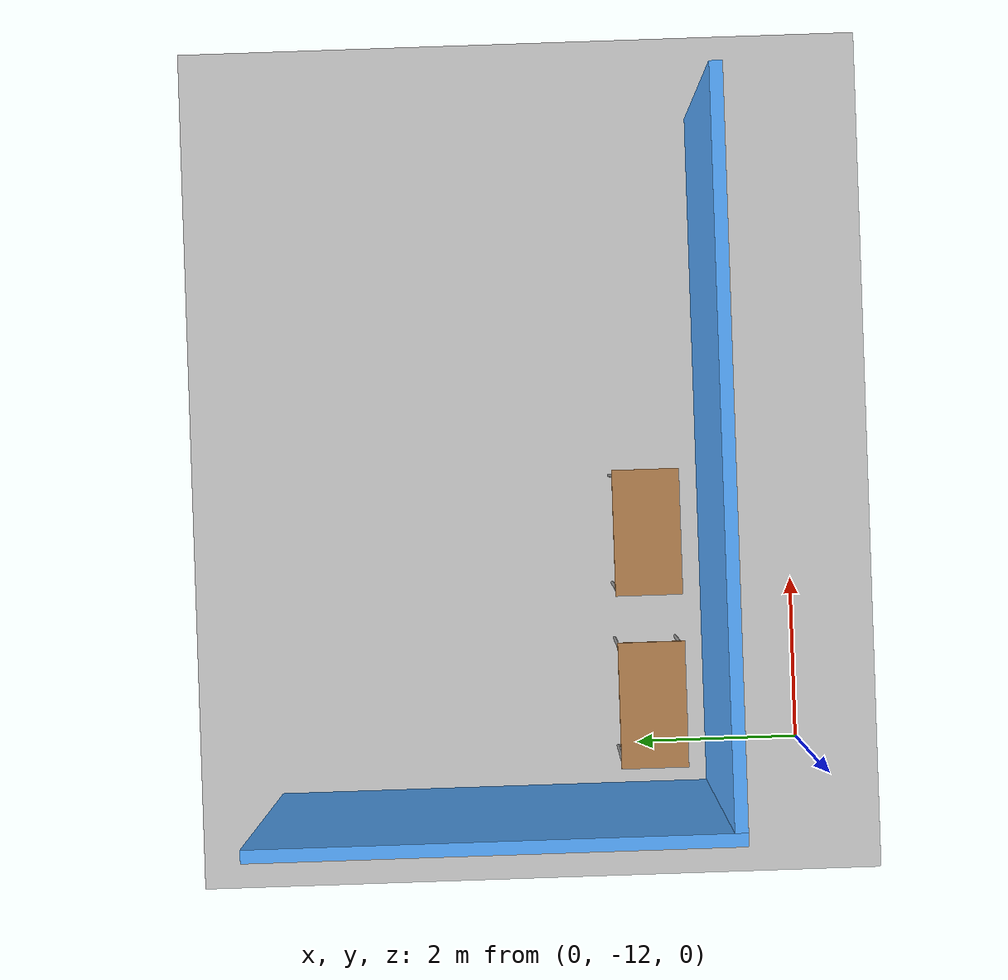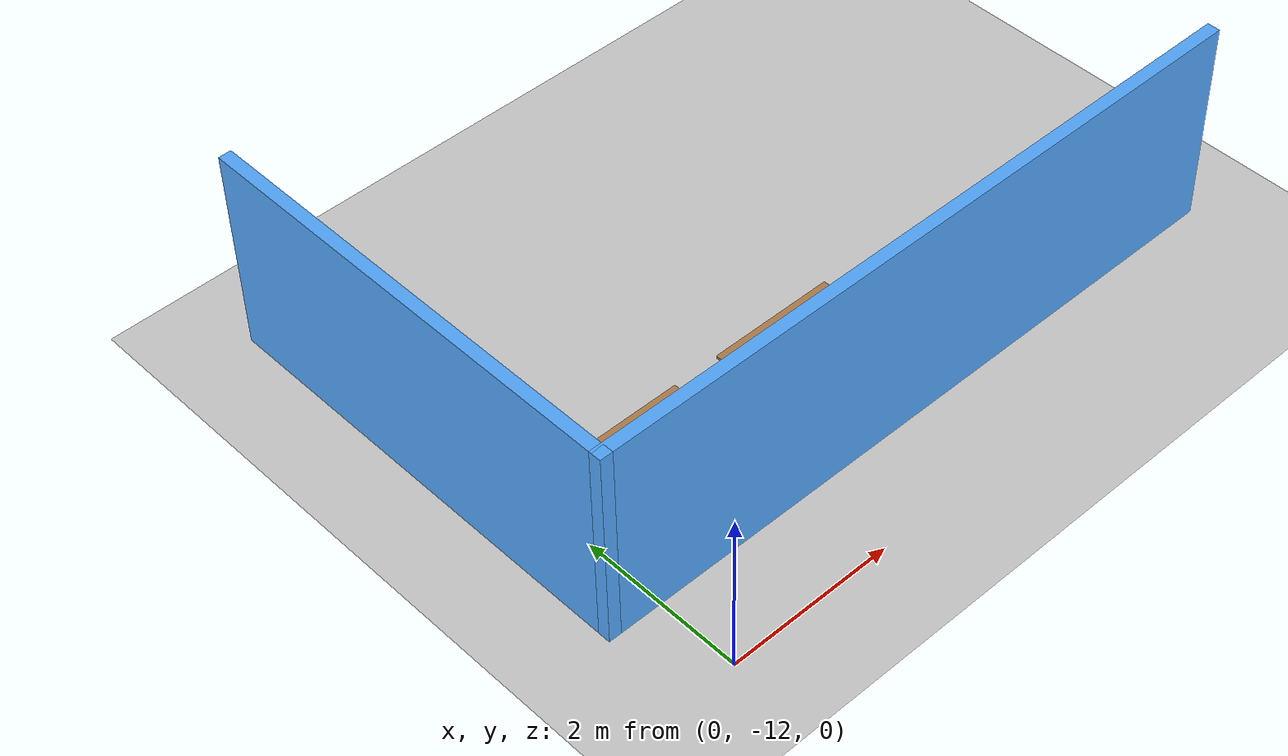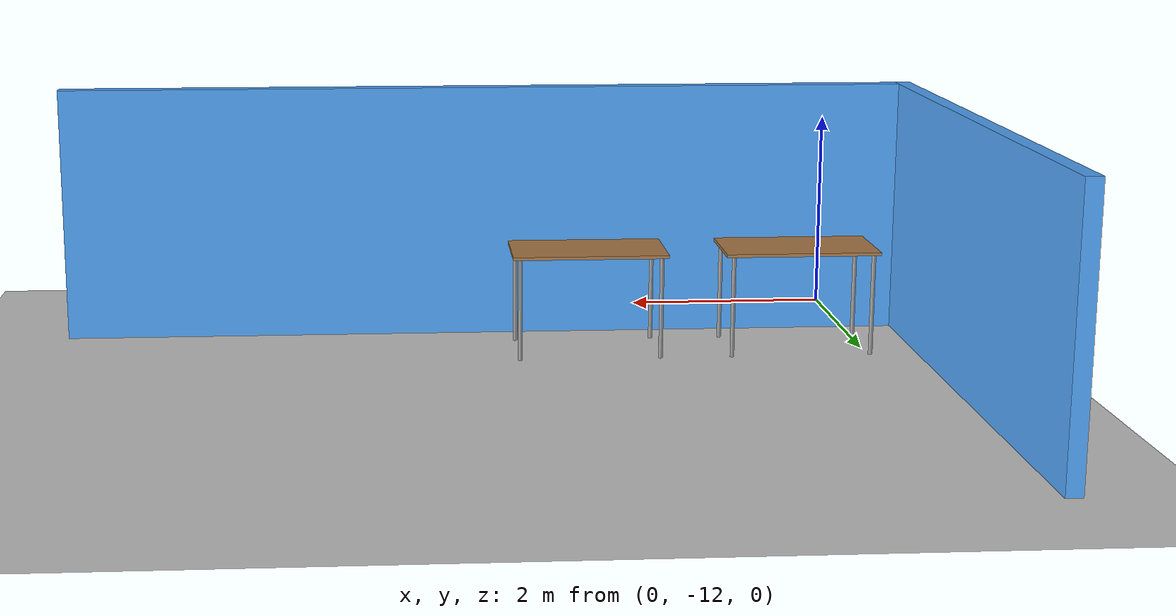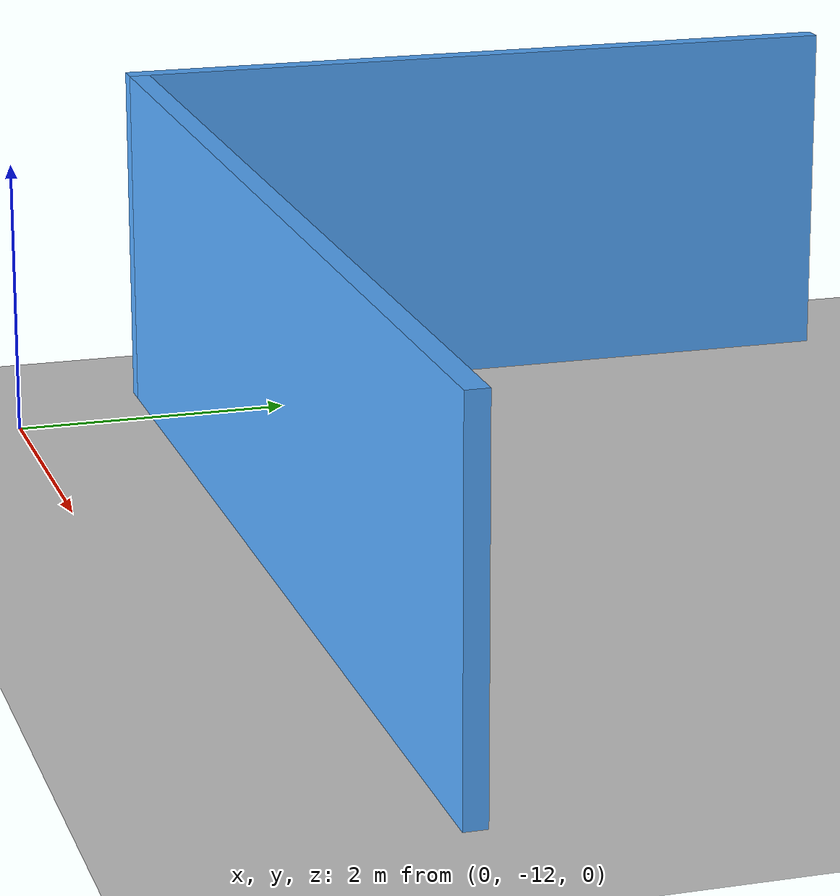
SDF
<sdf version="1.6">
 <world name="default">
  <model name="ground_plane">
   <static>1</static>
   <link name="link">
    <collision name="collision">
     <geometry><plane><normal>0 0 1</normal><size>100 100</size></plane></geometry>
     <surface><friction><ode><mu>100</mu><mu2>50</mu2></ode></friction></surface>
    </collision>
    <visual name="visual">
     <cast_shadows>0</cast_shadows>
     <geometry><plane><normal>0 0 1</normal><size>100 100</size></plane></geometry>
     <material>
      <script><uri>file://media/materials/scripts/gazebo.material</uri><name>Gazebo/Grey</name></script>
     </material>
    </visual>
   </link>
  </model>
  <model name="Building">
   <link name="Wall_10">
    <pose>2.99997 -7.175 0 0 -0 1.5708</pose>
    <visual name="Wall_10_Visual">
     <pose>0 0 1.25 0 -0 0</pose>
     <geometry><box><size>5.5 0.15 2.5</size></box></geometry>
     <material>
      <script><uri>file://media/materials/scripts/gazebo.material</uri><name>Gazebo/Grey</name></script>
      <ambient>0.333333 0.666667 1 1</ambient>
      <diffuse>0.7 0.7 0.7 1</diffuse>
      <specular>0.01 0.01 0.01 1</specular>
      <emissive>0 0 0 1</emissive>
     </material>
     <meta><layer>0</layer></meta>
    </visual>
    <collision name="Wall_10_Collision">
     <pose>0 0 1.25 0 -0 0</pose>
     <geometry><box><size>5.5 0.15 2.5</size></box></geometry>
     <surface>
      <friction>
       <ode><mu>1</mu><mu2>1</mu2><fdir1>0 0 0</fdir1><slip1>0</slip1><slip2>0</slip2></ode>
       <torsional>
        <coefficient>1</coefficient>
        <patch_radius>0</patch_radius>
        <surface_radius>0</surface_radius>
        <use_patch_radius>1</use_patch_radius>
        <ode><slip>0</slip></ode>
       </torsional>
      </friction>
      <bounce><restitution_coefficient>0</restitution_coefficient><threshold>1e+06</threshold></bounce>
      <contact>
       <collide_without_contact>0</collide_without_contact>
       <collide_without_contact_bitmask>1</collide_without_contact_bitmask>
       <collide_bitmask>1</collide_bitmask>
       <ode>
        <soft_cfm>0</soft_cfm>
        <soft_erp>0.2</soft_erp>
        <kp>1e+13</kp>
        <kd>1</kd>
        <max_vel>0.01</max_vel>
        <min_depth>0</min_depth>
       </ode>
       <bullet>
        <split_impulse>1</split_impulse>
        <split_impulse_penetration_threshold>-0.01</split_impulse_penetration_threshold>
        <soft_cfm>0</soft_cfm>
        <soft_erp>0.2</soft_erp>
        <kp>1e+13</kp>
        <kd>1</kd>
       </bullet>
      </contact>
     </surface>
    </collision>
   </link>
   <link name="Wall_9">
    <pose>7.17497 -9.85 0 0 -0 3.14159</pose>
    <visual name="Wall_9_Visual">
     <pose>0 0 1.25 0 -0 0</pose>
     <geometry><box><size>8.5 0.15 2.5</size></box></geometry>
     <material>
      <script><uri>file://media/materials/scripts/gazebo.material</uri><name>Gazebo/Grey</name></script>
      <ambient>0.333333 0.666667 1 1</ambient>
      <diffuse>0.7 0.7 0.7 1</diffuse>
      <specular>0.01 0.01 0.01 1</specular>
      <emissive>0 0 0 1</emissive>
     </material>
     <meta><layer>0</layer></meta>
    </visual>
    <collision name="Wall_9_Collision">
     <pose>0 0 1.25 0 -0 0</pose>
     <geometry><box><size>8.5 0.15 2.5</size></box></geometry>
     <surface>
      <friction>
       <ode><mu>1</mu><mu2>1</mu2><fdir1>0 0 0</fdir1><slip1>0</slip1><slip2>0</slip2></ode>
       <torsional>
        <coefficient>1</coefficient>
        <patch_radius>0</patch_radius>
        <surface_radius>0</surface_radius>
        <use_patch_radius>1</use_patch_radius>
        <ode><slip>0</slip></ode>
       </torsional>
      </friction>
      <bounce><restitution_coefficient>0</restitution_coefficient><threshold>1e+06</threshold></bounce>
      <contact>
       <collide_without_contact>0</collide_without_contact>
       <collide_without_contact_bitmask>1</collide_without_contact_bitmask>
       <collide_bitmask>1</collide_bitmask>
       <ode>
        <soft_cfm>0</soft_cfm>
        <soft_erp>0.2</soft_erp>
        <kp>1e+13</kp>
        <kd>1</kd>
        <max_vel>0.01</max_vel>
        <min_depth>0</min_depth>
       </ode>
       <bullet>
        <split_impulse>1</split_impulse>
        <split_impulse_penetration_threshold>-0.01</split_impulse_penetration_threshold>
        <soft_cfm>0</soft_cfm>
        <soft_erp>0.2</soft_erp>
        <kp>1e+13</kp>
        <kd>1</kd>
       </bullet>
      </contact>
     </surface>
    </collision>
   </link>
   <static>1</static>
   <pose>-3.57737 -1.07989 0 0 -0 0</pose>
  </model>
  <model name="table_0">
   <static>1</static>
   <link name="link">
    <collision name="surface">
     <pose>0 0 1 0 -0 0</pose>
     <geometry><box><size>1.5 0.8 0.03</size></box></geometry>
     <surface><friction><ode><mu>0.6</mu><mu2>0.6</mu2></ode></friction></surface>
    </collision>
    <visual name="visual1">
     <pose>0 0 1 0 -0 0</pose>
     <geometry><box><size>1.5 0.8 0.03</size></box></geometry>
     <material>
      <script><uri>file://media/materials/scripts/gazebo.material</uri><name>Gazebo/Wood</name></script>
     </material>
    </visual>
    <collision name="front_left_leg">
     <pose>0.68 0.38 0.5 0 -0 0</pose>
     <geometry><cylinder><radius>0.02</radius><length>1</length></cylinder></geometry>
    </collision>
    <visual name="front_left_leg">
     <pose>0.68 0.38 0.5 0 -0 0</pose>
     <geometry><cylinder><radius>0.02</radius><length>1</length></cylinder></geometry>
     <material>
      <script><uri>file://media/materials/scripts/gazebo.material</uri><name>Gazebo/Grey</name></script>
     </material>
    </visual>
    <collision name="front_right_leg">
     <pose>0.68 -0.38 0.5 0 -0 0</pose>
     <geometry><cylinder><radius>0.02</radius><length>1</length></cylinder></geometry>
    </collision>
    <visual name="front_right_leg">
     <pose>0.68 -0.38 0.5 0 -0 0</pose>
     <geometry><cylinder><radius>0.02</radius><length>1</length></cylinder></geometry>
     <material>
      <script><uri>file://media/materials/scripts/gazebo.material</uri><name>Gazebo/Grey</name></script>
     </material>
    </visual>
    <collision name="back_right_leg">
     <pose>-0.68 -0.38 0.5 0 -0 0</pose>
     <geometry><cylinder><radius>0.02</radius><length>1</length></cylinder></geometry>
    </collision>
    <visual name="back_right_leg">
     <pose>-0.68 -0.38 0.5 0 -0 0</pose>
     <geometry><cylinder><radius>0.02</radius><length>1</length></cylinder></geometry>
     <material>
      <script><uri>file://media/materials/scripts/gazebo.material</uri><name>Gazebo/Grey</name></script>
     </material>
    </visual>
    <collision name="back_left_leg">
     <pose>-0.68 0.38 0.5 0 -0 0</pose>
     <geometry><cylinder><radius>0.02</radius><length>1</length></cylinder></geometry>
    </collision>
    <visual name="back_left_leg">
     <pose>-0.68 0.38 0.5 0 -0 0</pose>
     <geometry><cylinder><radius>0.02</radius><length>1</length></cylinder></geometry>
     <material>
      <script><uri>file://media/materials/scripts/gazebo.material</uri><name>Gazebo/Grey</name></script>
     </material>
    </visual>
   </link>
   <pose>0.641362 -10.1384 0 0 -0 0</pose>
  </model>
  <model name="table_1">
   <static>1</static>
   <link name="link">
    <collision name="surface">
     <pose>0 0 1 0 -0 0</pose>
     <geometry><box><size>1.5 0.8 0.03</size></box></geometry>
     <surface><friction><ode><mu>0.6</mu><mu2>0.6</mu2></ode></friction></surface>
    </collision>
    <visual name="visual1">
     <pose>0 0 1 0 -0 0</pose>
     <geometry><box><size>1.5 0.8 0.03</size></box></geometry>
     <material>
      <script><uri>file://media/materials/scripts/gazebo.material</uri><name>Gazebo/Wood</name></script>
     </material>
    </visual>
    <collision name="front_left_leg">
     <pose>0.68 0.38 0.5 0 -0 0</pose>
     <geometry><cylinder><radius>0.02</radius><length>1</length></cylinder></geometry>
    </collision>
    <visual name="front_left_leg">
     <pose>0.68 0.38 0.5 0 -0 0</pose>
     <geometry><cylinder><radius>0.02</radius><length>1</length></cylinder></geometry>
     <material>
      <script><uri>file://media/materials/scripts/gazebo.material</uri><name>Gazebo/Grey</name></script>
     </material>
    </visual>
    <collision name="front_right_leg">
     <pose>0.68 -0.38 0.5 0 -0 0</pose>
     <geometry><cylinder><radius>0.02</radius><length>1</length></cylinder></geometry>
    </collision>
    <visual name="front_right_leg">
     <pose>0.68 -0.38 0.5 0 -0 0</pose>
     <geometry><cylinder><radius>0.02</radius><length>1</length></cylinder></geometry>
     <material>
      <script><uri>file://media/materials/scripts/gazebo.material</uri><name>Gazebo/Grey</name></script>
     </material>
    </visual>
    <collision name="back_right_leg">
     <pose>-0.68 -0.38 0.5 0 -0 0</pose>
     <geometry><cylinder><radius>0.02</radius><length>1</length></cylinder></geometry>
    </collision>
    <visual name="back_right_leg">
     <pose>-0.68 -0.38 0.5 0 -0 0</pose>
     <geometry><cylinder><radius>0.02</radius><length>1</length></cylinder></geometry>
     <material>
      <script><uri>file://media/materials/scripts/gazebo.material</uri><name>Gazebo/Grey</name></script>
     </material>
    </visual>
    <collision name="back_left_leg">
     <pose>-0.68 0.38 0.5 0 -0 0</pose>
     <geometry><cylinder><radius>0.02</radius><length>1</length></cylinder></geometry>
    </collision>
    <visual name="back_left_leg">
     <pose>-0.68 0.38 0.5 0 -0 0</pose>
     <geometry><cylinder><radius>0.02</radius><length>1</length></cylinder></geometry>
     <material>
      <script><uri>file://media/materials/scripts/gazebo.material</uri><name>Gazebo/Grey</name></script>
     </material>
    </visual>
   </link>
   <pose>2.69883 -10.1339 0 0 -0 0</pose>
  </model>
 </world>
</sdf>
